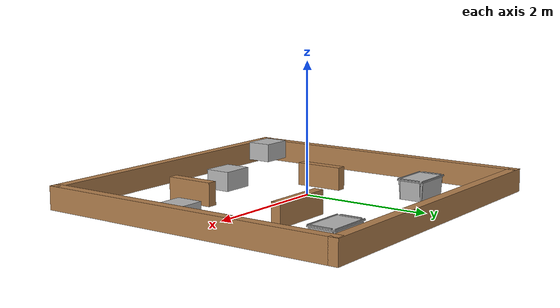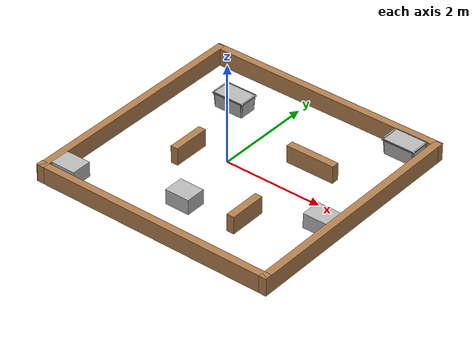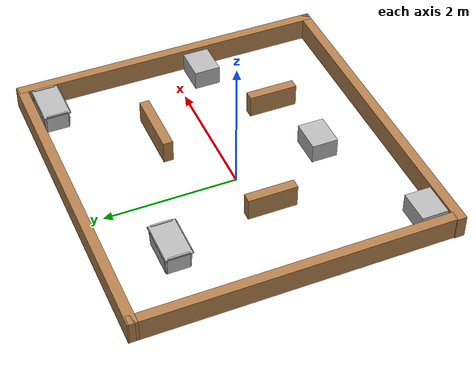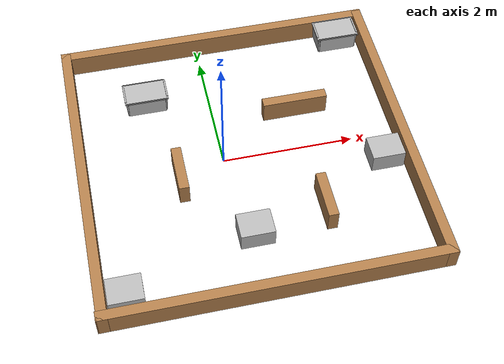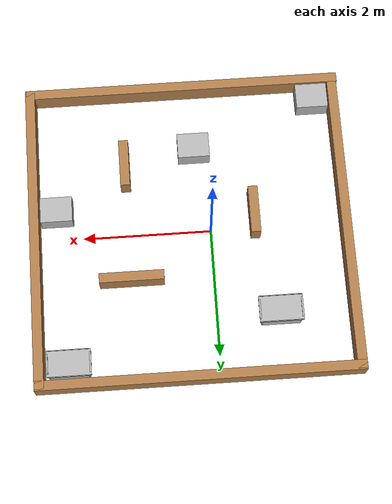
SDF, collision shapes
<?xml version='1.0'?>
<sdf version='1.6'>
  <model name='square-obj-world'>
    <model name='cardboard_box'>
      <pose frame=''>0.186944 -1.36996 0.125 0 -0 0</pose>
      <link name='link'>
        <inertial>
          <mass>2</mass>
          <inertia>
            <ixx>0.0416667</ixx>
            <ixy>0</ixy>
            <ixz>0</ixz>
            <iyy>0.0566667</iyy>
            <iyz>0</iyz>
            <izz>0.0683333</izz>
          </inertia>
        </inertial>
        <collision name='collision'>
          <geometry>
            <box>
              <size>0.5 0.4 0.3</size>
            </box>
          </geometry>
          <surface>
            <friction>
              <ode>
                <mu>1</mu>
                <mu2>1</mu2>
              </ode>
            </friction>
            <contact>
              <ode>
                <kp>1e+07</kp>
                <kd>1</kd>
                <min_depth>0.001</min_depth>
                <max_vel>0.1</max_vel>
              </ode>
            </contact>
          </surface>
        </collision>
        <visual name='visual'>
          <pose frame=''>0 0 -0.15 0 -0 0</pose>
          <geometry>
            <mesh>
              <uri>model://cardboard_box/meshes/cardboard_box.dae</uri>
              <scale>1.25932 1.00745 0.755591</scale>
            </mesh>
          </geometry>
        </visual>
      </link>
    </model>
    <model name='cardboard_box_0'>
      <pose frame=''>2.39563 -0.432658 0.125 0 -0 0</pose>
      <link name='link'>
        <inertial>
          <mass>2</mass>
          <inertia>
            <ixx>0.0416667</ixx>
            <ixy>0</ixy>
            <ixz>0</ixz>
            <iyy>0.0566667</iyy>
            <iyz>0</iyz>
            <izz>0.0683333</izz>
          </inertia>
        </inertial>
        <collision name='collision'>
          <geometry>
            <box>
              <size>0.5 0.4 0.3</size>
            </box>
          </geometry>
          <surface>
            <friction>
              <ode>
                <mu>1</mu>
                <mu2>1</mu2>
              </ode>
            </friction>
            <contact>
              <ode>
                <kp>1e+07</kp>
                <kd>1</kd>
                <min_depth>0.001</min_depth>
                <max_vel>0.1</max_vel>
              </ode>
            </contact>
          </surface>
        </collision>
        <visual name='visual'>
          <pose frame=''>0 0 -0.15 0 -0 0</pose>
          <geometry>
            <mesh>
              <uri>model://cardboard_box/meshes/cardboard_box.dae</uri>
              <scale>1.25932 1.00745 0.755591</scale>
            </mesh>
          </geometry>
        </visual>
      </link>
    </model>
    <model name='cardboard_box_1'>
      <pose frame=''>-1.75906 -2.06668 0.2 0 -0 0</pose>
      <link name='link'>
        <inertial>
          <mass>2</mass>
          <inertia>
            <ixx>0.0416667</ixx>
            <ixy>0</ixy>
            <ixz>0</ixz>
            <iyy>0.0566667</iyy>
            <iyz>0</iyz>
            <izz>0.0683333</izz>
          </inertia>
        </inertial>
        <collision name='collision'>
          <geometry>
            <box>
              <size>0.5 0.4 0.3</size>
            </box>
          </geometry>
          <surface>
            <friction>
              <ode>
                <mu>1</mu>
                <mu2>1</mu2>
              </ode>
            </friction>
            <contact>
              <ode>
                <kp>1e+07</kp>
                <kd>1</kd>
                <min_depth>0.001</min_depth>
                <max_vel>0.1</max_vel>
              </ode>
            </contact>
          </surface>
        </collision>
        <visual name='visual'>
          <pose frame=''>0 0 -0.15 0 -0 0</pose>
          <geometry>
            <mesh>
              <uri>model://cardboard_box/meshes/cardboard_box.dae</uri>
              <scale>1.25932 1.00745 0.755591</scale>
            </mesh>
          </geometry>
        </visual>
      </link>
    </model>
    <model name='grey_tote'>
      <link name='link'>
        <inertial>
          <pose frame=''>0 0 0.14155 0 -0 0</pose>
          <mass>3.53802</mass>
          <inertia>
            <ixx>0.0688358</ixx>
            <ixy>0</ixy>
            <ixz>0</ixz>
            <iyy>0.139596</iyy>
            <iyz>0</iyz>
            <izz>0.155909</izz>
          </inertia>
        </inertial>
        <collision name='lid'>
          <pose frame=''>0 0 0.28958 0 -0 0</pose>
          <geometry>
            <box>
              <size>0.67768 0.41298 0.01588</size>
            </box>
          </geometry>
        </collision>
        <collision name='lid_lip_1'>
          <pose frame=''>0 0.20063 0.3048 0 -0 0</pose>
          <geometry>
            <box>
              <size>0.65068 0.0105 0.0127</size>
            </box>
          </geometry>
        </collision>
        <collision name='lid_lip_2'>
          <pose frame=''>0 -0.20063 0.3048 0 -0 0</pose>
          <geometry>
            <box>
              <size>0.65068 0.0105 0.0127</size>
            </box>
          </geometry>
        </collision>
        <collision name='lid_lip_3'>
          <pose frame=''>0.32585 0 0.3048 0 -0 0</pose>
          <geometry>
            <box>
              <size>0.02602 0.31202 0.0127</size>
            </box>
          </geometry>
        </collision>
        <collision name='lid_lip_4'>
          <pose frame=''>-0.32585 0 0.3048 0 -0 0</pose>
          <geometry>
            <box>
              <size>0.02602 0.31202 0.0127</size>
            </box>
          </geometry>
        </collision>
        <collision name='side_wall_1'>
          <pose frame=''>0 -0.18 0.14155 0.061147 -0 0</pose>
          <geometry>
            <box>
              <size>0.58404 0.02602 0.283099</size>
            </box>
          </geometry>
        </collision>
        <collision name='side_wall_2'>
          <pose frame=''>0 0.18 0.14155 -0.061147 0 0</pose>
          <geometry>
            <box>
              <size>0.58404 0.02602 0.283099</size>
            </box>
          </geometry>
        </collision>
        <collision name='side_wall_3'>
          <pose frame=''>0.305 0 0.14155 0 0.061147 0</pose>
          <geometry>
            <box>
              <size>0.02602 0.33046 0.283099</size>
            </box>
          </geometry>
        </collision>
        <collision name='side_wall_4'>
          <pose frame=''>-0.305 0 0.14155 0 -0.061147 0</pose>
          <geometry>
            <box>
              <size>0.02602 0.33046 0.283099</size>
            </box>
          </geometry>
        </collision>
        <collision name='bottom'>
          <pose frame=''>0 0 0.01 0 -0 0</pose>
          <geometry>
            <box>
              <size>0.58404 0.33046 0.02</size>
            </box>
          </geometry>
        </collision>
        <collision name='corner_1'>
          <pose frame=''>0.30202 -0.175 0.14155 0.061147 0.061147 -0</pose>
          <geometry>
            <cylinder>
              <radius>0.01268</radius>
              <length>0.283099</length>
            </cylinder>
          </geometry>
        </collision>
        <collision name='corner_2'>
          <pose frame=''>-0.30202 -0.175 0.14155 0.061147 -0.061147 0</pose>
          <geometry>
            <cylinder>
              <radius>0.01268</radius>
              <length>0.283099</length>
            </cylinder>
          </geometry>
        </collision>
        <collision name='corner_3'>
          <pose frame=''>-0.30202 0.175 0.14155 -0.061147 -0.061147 -0</pose>
          <geometry>
            <cylinder>
              <radius>0.01268</radius>
              <length>0.283099</length>
            </cylinder>
          </geometry>
        </collision>
        <collision name='corner_4'>
          <pose frame=''>0.30202 0.175 0.14155 -0.061147 0.061147 0</pose>
          <geometry>
            <cylinder>
              <radius>0.01268</radius>
              <length>0.283099</length>
            </cylinder>
          </geometry>
        </collision>
        <visual name='visual'>
          <geometry>
            <mesh>
              <uri>model://grey_tote/meshes/tote.dae</uri>
            </mesh>
          </geometry>
        </visual>
      </link>
      <pose frame=''>-0.971974 1.37788 -0.025 0 -0 0</pose>
    </model>
    <model name='grey_tote_0'>
      <link name='link'>
        <inertial>
          <pose frame=''>0 0 0.14155 0 -0 0</pose>
          <mass>3.53802</mass>
          <inertia>
            <ixx>0.0688358</ixx>
            <ixy>0</ixy>
            <ixz>0</ixz>
            <iyy>0.139596</iyy>
            <iyz>0</iyz>
            <izz>0.155909</izz>
          </inertia>
        </inertial>
        <collision name='lid'>
          <pose frame=''>0 0 0.28958 0 -0 0</pose>
          <geometry>
            <box>
              <size>0.67768 0.41298 0.01588</size>
            </box>
          </geometry>
        </collision>
        <collision name='lid_lip_1'>
          <pose frame=''>0 0.20063 0.3048 0 -0 0</pose>
          <geometry>
            <box>
              <size>0.65068 0.0105 0.0127</size>
            </box>
          </geometry>
        </collision>
        <collision name='lid_lip_2'>
          <pose frame=''>0 -0.20063 0.3048 0 -0 0</pose>
          <geometry>
            <box>
              <size>0.65068 0.0105 0.0127</size>
            </box>
          </geometry>
        </collision>
        <collision name='lid_lip_3'>
          <pose frame=''>0.32585 0 0.3048 0 -0 0</pose>
          <geometry>
            <box>
              <size>0.02602 0.31202 0.0127</size>
            </box>
          </geometry>
        </collision>
        <collision name='lid_lip_4'>
          <pose frame=''>-0.32585 0 0.3048 0 -0 0</pose>
          <geometry>
            <box>
              <size>0.02602 0.31202 0.0127</size>
            </box>
          </geometry>
        </collision>
        <collision name='side_wall_1'>
          <pose frame=''>0 -0.18 0.14155 0.061147 -0 0</pose>
          <geometry>
            <box>
              <size>0.58404 0.02602 0.283099</size>
            </box>
          </geometry>
        </collision>
        <collision name='side_wall_2'>
          <pose frame=''>0 0.18 0.14155 -0.061147 0 0</pose>
          <geometry>
            <box>
              <size>0.58404 0.02602 0.283099</size>
            </box>
          </geometry>
        </collision>
        <collision name='side_wall_3'>
          <pose frame=''>0.305 0 0.14155 0 0.061147 0</pose>
          <geometry>
            <box>
              <size>0.02602 0.33046 0.283099</size>
            </box>
          </geometry>
        </collision>
        <collision name='side_wall_4'>
          <pose frame=''>-0.305 0 0.14155 0 -0.061147 0</pose>
          <geometry>
            <box>
              <size>0.02602 0.33046 0.283099</size>
            </box>
          </geometry>
        </collision>
        <collision name='bottom'>
          <pose frame=''>0 0 0.01 0 -0 0</pose>
          <geometry>
            <box>
              <size>0.58404 0.33046 0.02</size>
            </box>
          </geometry>
        </collision>
        <collision name='corner_1'>
          <pose frame=''>0.30202 -0.175 0.14155 0.061147 0.061147 -0</pose>
          <geometry>
            <cylinder>
              <radius>0.01268</radius>
              <length>0.283099</length>
            </cylinder>
          </geometry>
        </collision>
        <collision name='corner_2'>
          <pose frame=''>-0.30202 -0.175 0.14155 0.061147 -0.061147 0</pose>
          <geometry>
            <cylinder>
              <radius>0.01268</radius>
              <length>0.283099</length>
            </cylinder>
          </geometry>
        </collision>
        <collision name='corner_3'>
          <pose frame=''>-0.30202 0.175 0.14155 -0.061147 -0.061147 -0</pose>
          <geometry>
            <cylinder>
              <radius>0.01268</radius>
              <length>0.283099</length>
            </cylinder>
          </geometry>
        </collision>
        <collision name='corner_4'>
          <pose frame=''>0.30202 0.175 0.14155 -0.061147 0.061147 0</pose>
          <geometry>
            <cylinder>
              <radius>0.01268</radius>
              <length>0.283099</length>
            </cylinder>
          </geometry>
        </collision>
        <visual name='visual'>
          <geometry>
            <mesh>
              <uri>model://grey_tote/meshes/tote.dae</uri>
            </mesh>
          </geometry>
        </visual>
      </link>
      <pose frame=''>2.28211 2.02988 0.05 0 -0 0</pose>
    </model>
    <model name='square-world-3-barrier'>
      <pose frame=''>0.311349 -0.019394 -0.025 0 -0 0</pose>
      <link name='Wall_0'>
        <collision name='Wall_0_Collision'>
          <geometry>
            <box>
              <size>5 0.15 0.35</size>
            </box>
          </geometry>
          <pose frame=''>0 0 0.175 0 -0 0</pose>
        </collision>
        <visual name='Wall_0_Visual'>
          <pose frame=''>0 0 0.175 0 -0 0</pose>
          <geometry>
            <box>
              <size>5 0.15 0.35</size>
            </box>
          </geometry>
          <material>
            <script>
              <uri>file://media/materials/scripts/gazebo.material</uri>
              <name>Gazebo/Wood</name>
            </script>
            <ambient>1 1 1 1</ambient>
          </material>
          <meta>
            <layer>0</layer>
          </meta>
        </visual>
        <pose frame=''>0.005795 2.35828 0 0 -0 0</pose>
      </link>
      <link name='Wall_1'>
        <collision name='Wall_1_Collision'>
          <geometry>
            <box>
              <size>4.84647 0.15 0.35</size>
            </box>
          </geometry>
          <pose frame=''>0 0 0.175 0 -0 0</pose>
        </collision>
        <visual name='Wall_1_Visual'>
          <pose frame=''>0 0 0.175 0 -0 0</pose>
          <geometry>
            <box>
              <size>4.84647 0.15 0.35</size>
            </box>
          </geometry>
          <material>
            <script>
              <uri>file://media/materials/scripts/gazebo.material</uri>
              <name>Gazebo/Wood</name>
            </script>
            <ambient>1 1 1 1</ambient>
          </material>
          <meta>
            <layer>0</layer>
          </meta>
        </visual>
        <pose frame=''>2.4312 -0.010033 0 0 -0 -1.57062</pose>
      </link>
      <link name='Wall_12'>
        <collision name='Wall_12_Collision'>
          <geometry>
            <box>
              <size>0.75 0.15 0.35</size>
            </box>
          </geometry>
          <pose frame=''>0 0 0.175 0 -0 0</pose>
        </collision>
        <visual name='Wall_12_Visual'>
          <pose frame=''>0 0 0.175 0 -0 0</pose>
          <geometry>
            <box>
              <size>0.75 0.15 0.35</size>
            </box>
          </geometry>
          <material>
            <script>
              <uri>file://media/materials/scripts/gazebo.material</uri>
              <name>Gazebo/Wood</name>
            </script>
            <ambient>1 1 1 1</ambient>
          </material>
          <meta>
            <layer>0</layer>
          </meta>
        </visual>
        <pose frame=''>0.982054 -1.10747 0 0 -0 -1.5708</pose>
      </link>
      <link name='Wall_2'>
        <collision name='Wall_2_Collision'>
          <geometry>
            <box>
              <size>5 0.15 0.35</size>
            </box>
          </geometry>
          <pose frame=''>0 0 0.175 0 -0 0</pose>
        </collision>
        <visual name='Wall_2_Visual'>
          <pose frame=''>0 0 0.175 0 -0 0</pose>
          <geometry>
            <box>
              <size>5 0.15 0.35</size>
            </box>
          </geometry>
          <material>
            <script>
              <uri>file://media/materials/scripts/gazebo.material</uri>
              <name>Gazebo/Wood</name>
            </script>
            <ambient>1 1 1 1</ambient>
          </material>
          <meta>
            <layer>0</layer>
          </meta>
        </visual>
        <pose frame=''>-0.006619 -2.35823 0 0 -0 3.14159</pose>
      </link>
      <link name='Wall_5'>
        <collision name='Wall_5_Collision'>
          <geometry>
            <box>
              <size>4.84647 0.15 0.35</size>
            </box>
          </geometry>
          <pose frame=''>0 0 0.175 0 -0 0</pose>
        </collision>
        <visual name='Wall_5_Visual'>
          <pose frame=''>0 0 0.175 0 -0 0</pose>
          <geometry>
            <box>
              <size>4.84647 0.15 0.35</size>
            </box>
          </geometry>
          <material>
            <script>
              <uri>file://media/materials/scripts/gazebo.material</uri>
              <name>Gazebo/Wood</name>
            </script>
            <ambient>1 1 1 1</ambient>
          </material>
          <meta>
            <layer>0</layer>
          </meta>
        </visual>
        <pose frame=''>-2.4188 -0.010033 0 0 -0 1.57097</pose>
      </link>
      <link name='Wall_7'>
        <collision name='Wall_7_Collision'>
          <geometry>
            <box>
              <size>1 0.15 0.35</size>
            </box>
          </geometry>
          <pose frame=''>0 0 0.175 0 -0 0</pose>
        </collision>
        <visual name='Wall_7_Visual'>
          <pose frame=''>0 0 0.175 0 -0 0</pose>
          <geometry>
            <box>
              <size>1 0.15 0.35</size>
            </box>
          </geometry>
          <material>
            <script>
              <uri>file://media/materials/scripts/gazebo.material</uri>
              <name>Gazebo/Wood</name>
            </script>
            <ambient>1 1 1 1</ambient>
          </material>
          <meta>
            <layer>0</layer>
          </meta>
        </visual>
        <pose frame=''>0.962209 0.758059 0 0 -0 0</pose>
      </link>
      <link name='Wall_9'>
        <collision name='Wall_9_Collision'>
          <geometry>
            <box>
              <size>0.75 0.15 0.35</size>
            </box>
          </geometry>
          <pose frame=''>0 0 0.175 0 -0 0</pose>
        </collision>
        <visual name='Wall_9_Visual'>
          <pose frame=''>0 0 0.175 0 -0 0</pose>
          <geometry>
            <box>
              <size>0.75 0.15 0.35</size>
            </box>
          </geometry>
          <material>
            <script>
              <uri>file://media/materials/scripts/gazebo.material</uri>
              <name>Gazebo/Wood</name>
            </script>
            <ambient>1 1 1 1</ambient>
          </material>
          <meta>
            <layer>0</layer>
          </meta>
        </visual>
        <pose frame=''>-1.00494 -0.20518 0 0 -0 -1.5708</pose>
      </link>
      <static>1</static>
    </model>
    <static>0</static>
    <allow_auto_disable>1</allow_auto_disable>
  </model>
</sdf>
